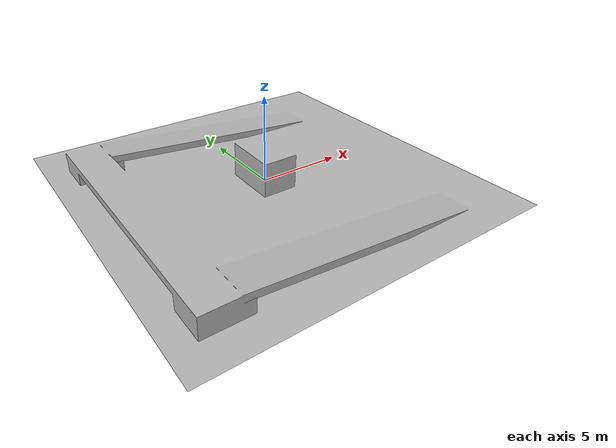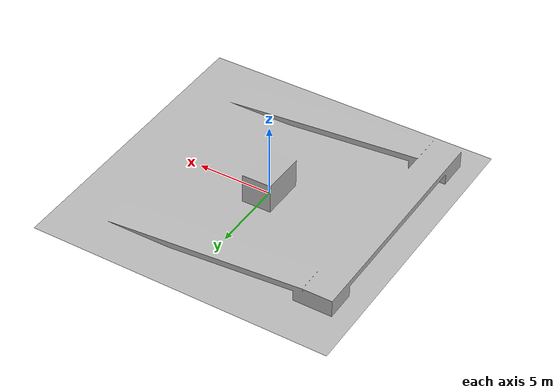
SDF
<sdf version='1.6'>
  <world name='default'>
    <include>
      <uri>model://sun</uri>
    </include>

    <include>
      <name>incline</name>
      <uri>model://incline</uri>
      <pose>0 0 0 0 0 0</pose>
    </include>

    <gui fullscreen='0'>
      <camera name='user_camera'>
        <pose frame=''>9.0 -12.0 6.0 0.0 0.3 2.2</pose>
        <view_controller>orbit</view_controller>
        <projection_type>perspective</projection_type>
      </camera>
    </gui>

  </world>
</sdf>

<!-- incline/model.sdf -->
<sdf version="1.5">
  <model name="incline">
    <pose>0 0 0 0 0 0</pose>
    <static>true</static>
    <link name="body">
      <visual name="visual">
        <geometry>
          <mesh><uri>model://incline/media/incline.dae</uri></mesh>
        </geometry>
	<material>
          <script>
            <uri>model://terrain_1/media/scripts</uri>
            <uri>model://terrain_1/media/Textures</uri>
          </script>
        </material>
      </visual>
      <collision name="collision">
        <geometry>
          <mesh><uri>model://incline/media/incline.dae</uri></mesh>
        </geometry>
      </collision>
    </link>
  </model>
</sdf>
